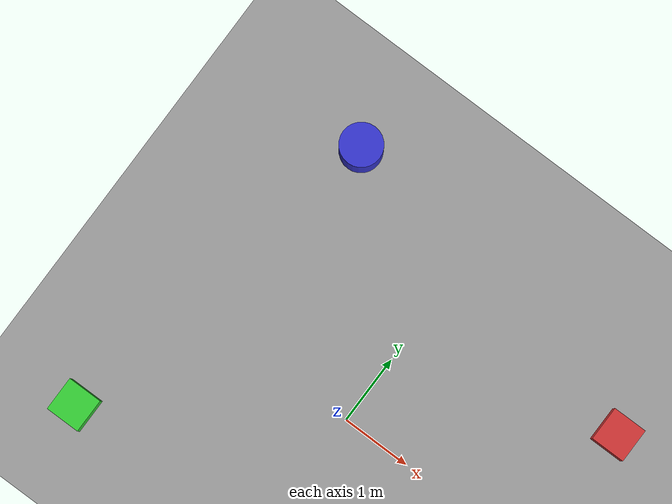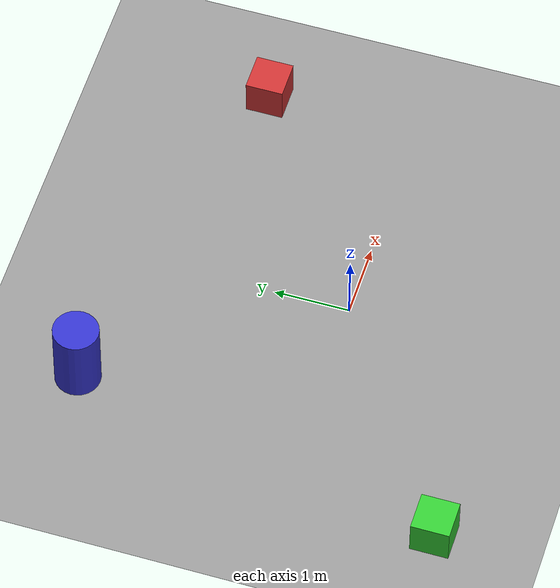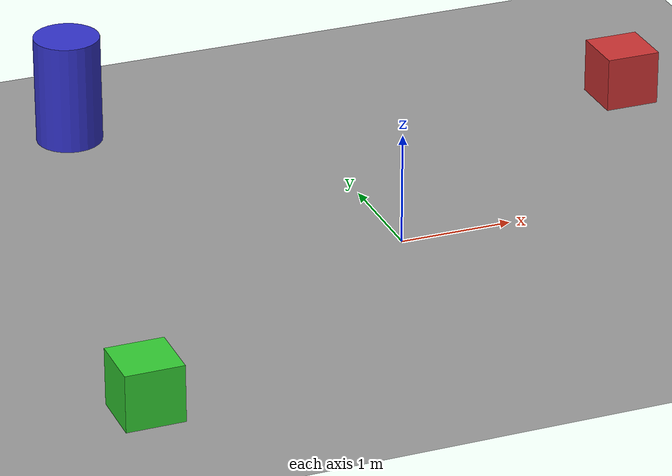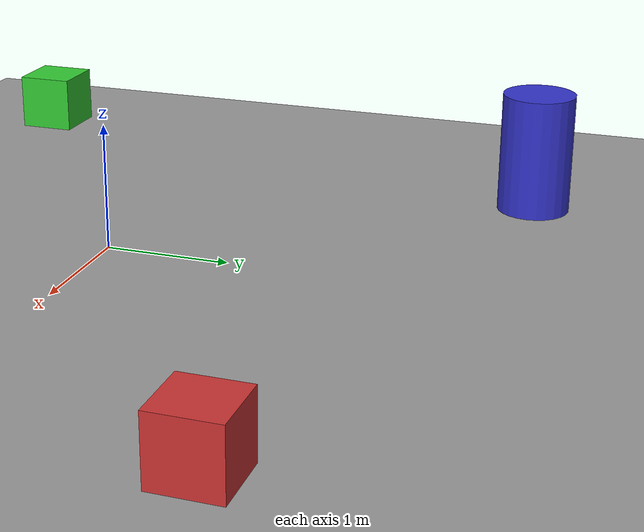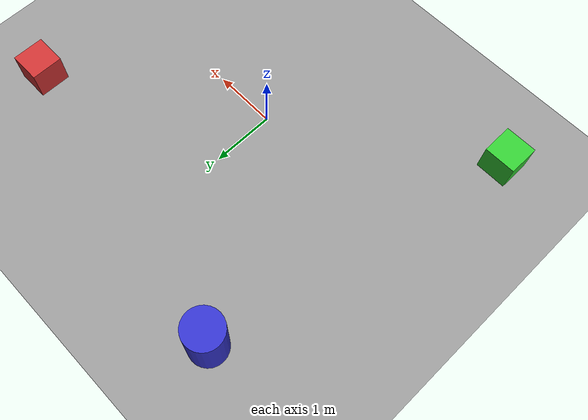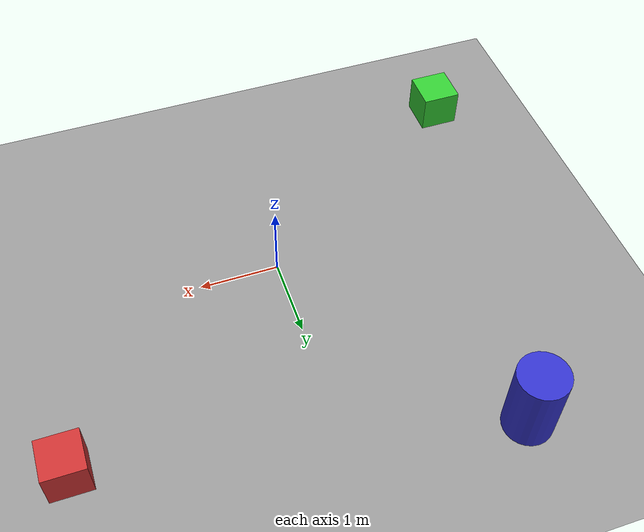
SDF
<?xml version="1.0" ?>
<sdf version="1.9">
  <world name="flat_world">

    <!-- Physics -->
    <physics name="fast_physics" type="ignored">
      <max_step_size>0.01</max_step_size>
      <real_time_factor>1.0</real_time_factor>
    </physics>

    <!-- Plugins -->
    <plugin filename="gz-sim-physics-system" name="gz::sim::systems::Physics"/>
    <plugin filename="gz-sim-user-commands-system" name="gz::sim::systems::UserCommands"/>
    <plugin filename="gz-sim-scene-broadcaster-system" name="gz::sim::systems::SceneBroadcaster"/>
    <plugin filename="gz-sim-sensors-system" name="gz::sim::systems::Sensors">
      <render_engine>ogre2</render_engine>
    </plugin>

    <!-- Lighting -->
    <light type="directional" name="sun">
      <cast_shadows>false</cast_shadows>
      <pose>0 0 10 0 0 0</pose>
      <diffuse>1.0 1.0 1.0 1</diffuse>
      <specular>0.1 0.1 0.1 1</specular>
      <direction>-0.5 0.1 -0.9</direction>
    </light>

    <!-- Scene -->
    <scene>
      <ambient>0.4 0.4 0.4 1</ambient>
      <background>0.7 0.7 0.7 1</background>
      <shadows>false</shadows>
      <grid>false</grid>
    </scene>

    <!-- Ground plane -->
    <model name="ground_plane">
      <static>true</static>
      <link name="link">
        <collision name="collision">
          <geometry>
            <plane>
              <normal>0 0 1</normal>
              <size>20 20</size>
            </plane>
          </geometry>
        </collision>
        <visual name="visual">
          <geometry>
            <plane>
              <normal>0 0 1</normal>
              <size>20 20</size>
            </plane>
          </geometry>
          <material>
            <ambient>0.5 0.5 0.5 1</ambient>
            <diffuse>0.6 0.6 0.6 1</diffuse>
          </material>
        </visual>
      </link>
    </model>

    <!-- Obstacles -->
    <model name="box1">
      <static>true</static>
      <pose>3 2 0.25 0 0 0</pose>
      <link name="link">
        <collision name="collision">
          <geometry>
            <box>
              <size>0.5 0.5 0.5</size>
            </box>
          </geometry>
        </collision>
        <visual name="visual">
          <geometry>
            <box>
              <size>0.5 0.5 0.5</size>
            </box>
          </geometry>
          <material>
            <ambient>0.8 0.2 0.2 1</ambient>
            <diffuse>0.8 0.2 0.2 1</diffuse>
          </material>
        </visual>
      </link>
    </model>

    <model name="box2">
      <static>true</static>
      <pose>-3 -2 0.25 0 0 0</pose>
      <link name="link">
        <collision name="collision">
          <geometry>
            <box>
              <size>0.5 0.5 0.5</size>
            </box>
          </geometry>
        </collision>
        <visual name="visual">
          <geometry>
            <box>
              <size>0.5 0.5 0.5</size>
            </box>
          </geometry>
          <material>
            <ambient>0.2 0.8 0.2 1</ambient>
            <diffuse>0.2 0.8 0.2 1</diffuse>
          </material>
        </visual>
      </link>
    </model>

    <model name="cylinder1">
      <static>true</static>
      <pose>-2 3 0.5 0 0 0</pose>
      <link name="link">
        <collision name="collision">
          <geometry>
            <cylinder>
              <radius>0.3</radius>
              <length>1.0</length>
            </cylinder>
          </geometry>
        </collision>
        <visual name="visual">
          <geometry>
            <cylinder>
              <radius>0.3</radius>
              <length>1.0</length>
            </cylinder>
          </geometry>
          <material>
            <ambient>0.2 0.2 0.8 1</ambient>
            <diffuse>0.2 0.2 0.8 1</diffuse>
          </material>
        </visual>
      </link>
    </model>

  </world>
</sdf>
